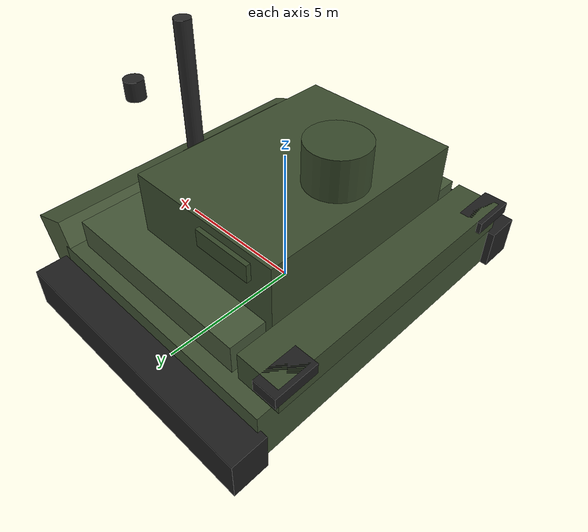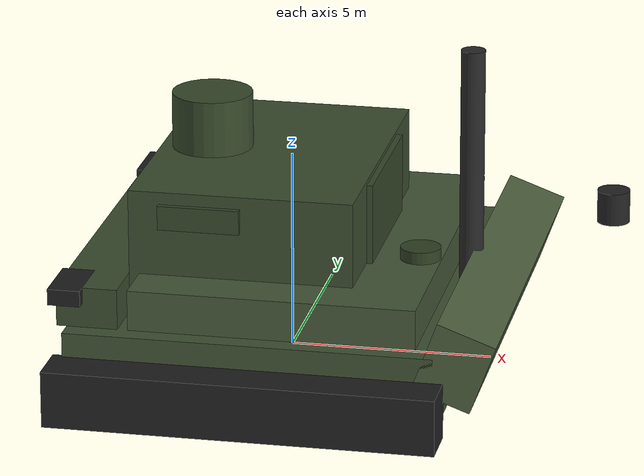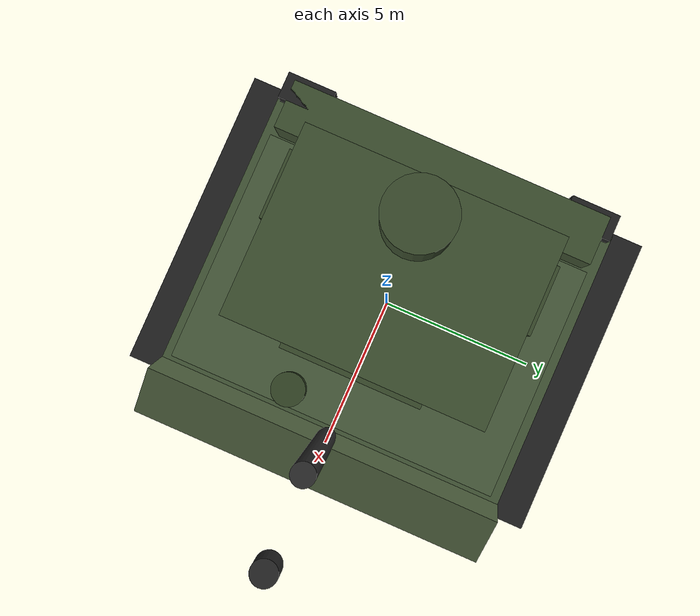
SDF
<?xml version="1.0" ?>
<sdf version="1.6">
  <model name="simple_vehicle">
    <static>true</static>

    <!-- Main Hull/Chassis -->
    <link name="hull_lower">
      <pose>0 0 1.0 0 0 0</pose>
      <collision name="hull_lower_collision">
        <geometry>
          <box>
            <size>9.0 11.0 2.0</size>
          </box>
        </geometry>
      </collision>
      <visual name="hull_lower_visual">
        <geometry>
          <box>
            <size>9.0 11.0 2.0</size>
          </box>
        </geometry>
        <material>
          <ambient>0.22 0.28 0.18 1</ambient>
          <diffuse>0.25 0.32 0.20 1</diffuse>
          <specular>0.15 0.15 0.15 1</specular>
        </material>
      </visual>
    </link>

    <!-- Upper Hull -->
    <link name="hull_upper">
      <pose>0.5 0 2.5 0 0 0</pose>
      <collision name="hull_upper_collision">
        <geometry>
          <box>
            <size>7.0 10.0 1.0</size>
          </box>
        </geometry>
      </collision>
      <visual name="hull_upper_visual">
        <geometry>
          <box>
            <size>7.0 10.0 1.0</size>
          </box>
        </geometry>
        <material>
          <ambient>0.24 0.30 0.19 1</ambient>
          <diffuse>0.27 0.34 0.22 1</diffuse>
          <specular>0.18 0.18 0.18 1</specular>
        </material>
      </visual>
    </link>

    <!-- Main Turret -->
    <link name="turret_base">
      <pose>-0.5 0 3.8 0 0 0</pose>
      <collision name="turret_collision">
        <geometry>
          <box>
            <size>5.5 7.5 2.6</size>
          </box>
        </geometry>
      </collision>
      <visual name="turret_visual">
        <geometry>
          <box>
            <size>5.5 7.5 2.6</size>
          </box>
        </geometry>
        <material>
          <ambient>0.20 0.26 0.16 1</ambient>
          <diffuse>0.23 0.30 0.18 1</diffuse>
          <specular>0.20 0.20 0.20 1</specular>
        </material>
      </visual>
    </link>

    <!-- Turret Front Armor (Mantlet) -->
    <link name="turret_mantlet">
      <pose>1.5 0 4.0 0 0 0</pose>
      <collision name="mantlet_collision">
        <geometry>
          <box>
            <size>1.8 4.0 2.0</size>
          </box>
        </geometry>
      </collision>
      <visual name="mantlet_visual">
        <geometry>
          <box>
            <size>1.8 4.0 2.0</size>
          </box>
        </geometry>
        <material>
          <ambient>0.18 0.24 0.14 1</ambient>
          <diffuse>0.21 0.28 0.16 1</diffuse>
          <specular>0.25 0.25 0.25 1</specular>
        </material>
      </visual>
    </link>

    <!-- Commander's Cupola -->
    <link name="cupola">
      <pose>-2.0 0 5.8 0 0 0</pose>
      <collision name="cupola_collision">
        <geometry>
          <cylinder>
            <radius>1.0</radius>
            <length>1.4</length>
          </cylinder>
        </geometry>
      </collision>
      <visual name="cupola_visual">
        <geometry>
          <cylinder>
            <radius>1.0</radius>
            <length>1.4</length>
          </cylinder>
        </geometry>
        <material>
          <ambient>0.19 0.25 0.15 1</ambient>
          <diffuse>0.22 0.29 0.17 1</diffuse>
          <specular>0.22 0.22 0.22 1</specular>
        </material>
      </visual>
    </link>

    <!-- Main Gun Barrel -->
    <link name="gun_barrel">
      <pose>4.5 0 4.2 0 0 0</pose>
      <collision name="gun_collision">
        <geometry>
          <cylinder>
            <radius>0.30</radius>
            <length>7.5</length>
          </cylinder>
        </geometry>
      </collision>
      <visual name="gun_visual">
        <geometry>
          <cylinder>
            <radius>0.30</radius>
            <length>7.5</length>
          </cylinder>
        </geometry>
        <material>
          <ambient>0.12 0.12 0.12 1</ambient>
          <diffuse>0.16 0.16 0.16 1</diffuse>
          <specular>0.35 0.35 0.35 1</specular>
        </material>
      </visual>
    </link>

    <!-- Gun Muzzle Brake -->
    <link name="muzzle_brake">
      <pose>8.0 0 4.2 0 0 0</pose>
      <collision name="muzzle_collision">
        <geometry>
          <cylinder>
            <radius>0.40</radius>
            <length>0.8</length>
          </cylinder>
        </geometry>
      </collision>
      <visual name="muzzle_visual">
        <geometry>
          <cylinder>
            <radius>0.40</radius>
            <length>0.8</length>
          </cylinder>
        </geometry>
        <material>
          <ambient>0.10 0.10 0.10 1</ambient>
          <diffuse>0.14 0.14 0.14 1</diffuse>
          <specular>0.40 0.40 0.40 1</specular>
        </material>
      </visual>
    </link>

    <!-- Left Track Assembly -->
    <link name="track_left">
      <pose>0 6.0 0.7 0 0 0</pose>
      <collision name="track_left_collision">
        <geometry>
          <box>
            <size>9.5 1.2 1.4</size>
          </box>
        </geometry>
      </collision>
      <visual name="track_left_visual">
        <geometry>
          <box>
            <size>9.5 1.2 1.4</size>
          </box>
        </geometry>
        <material>
          <ambient>0.08 0.08 0.08 1</ambient>
          <diffuse>0.12 0.12 0.12 1</diffuse>
          <specular>0.08 0.08 0.08 1</specular>
        </material>
      </visual>
    </link>

    <!-- Right Track Assembly -->
    <link name="track_right">
      <pose>0 -6.0 0.7 0 0 0</pose>
      <collision name="track_right_collision">
        <geometry>
          <box>
            <size>9.5 1.2 1.4</size>
          </box>
        </geometry>
      </collision>
      <visual name="track_right_visual">
        <geometry>
          <box>
            <size>9.5 1.2 1.4</size>
          </box>
        </geometry>
        <material>
          <ambient>0.08 0.08 0.08 1</ambient>
          <diffuse>0.12 0.12 0.12 1</diffuse>
          <specular>0.08 0.08 0.08 1</specular>
        </material>
      </visual>
    </link>

    <!-- Road Wheels - Left Side -->
    <link name="wheel_1_left">
      <pose>3.5 6.0 0.7 1.5708 0 0</pose>
      <collision name="wheel_collision">
        <geometry>
          <cylinder>
            <radius>0.70</radius>
            <length>0.5</length>
          </cylinder>
        </geometry>
      </collision>
      <visual name="wheel_visual">
        <geometry>
          <cylinder>
            <radius>0.70</radius>
            <length>0.5</length>
          </cylinder>
        </geometry>
        <material>
          <ambient>0.06 0.06 0.06 1</ambient>
          <diffuse>0.10 0.10 0.10 1</diffuse>
          <specular>0.12 0.12 0.12 1</specular>
        </material>
      </visual>
    </link>

    <link name="wheel_2_left">
      <pose>1.5 6.0 0.7 1.5708 0 0</pose>
      <collision name="wheel_collision">
        <geometry>
          <cylinder>
            <radius>0.70</radius>
            <length>0.5</length>
          </cylinder>
        </geometry>
      </collision>
      <visual name="wheel_visual">
        <geometry>
          <cylinder>
            <radius>0.70</radius>
            <length>0.5</length>
          </cylinder>
        </geometry>
        <material>
          <ambient>0.06 0.06 0.06 1</ambient>
          <diffuse>0.10 0.10 0.10 1</diffuse>
          <specular>0.12 0.12 0.12 1</specular>
        </material>
      </visual>
    </link>

    <link name="wheel_3_left">
      <pose>-0.5 6.0 0.7 1.5708 0 0</pose>
      <collision name="wheel_collision">
        <geometry>
          <cylinder>
            <radius>0.70</radius>
            <length>0.5</length>
          </cylinder>
        </geometry>
      </collision>
      <visual name="wheel_visual">
        <geometry>
          <cylinder>
            <radius>0.70</radius>
            <length>0.5</length>
          </cylinder>
        </geometry>
        <material>
          <ambient>0.06 0.06 0.06 1</ambient>
          <diffuse>0.10 0.10 0.10 1</diffuse>
          <specular>0.12 0.12 0.12 1</specular>
        </material>
      </visual>
    </link>

    <link name="wheel_4_left">
      <pose>-2.5 6.0 0.7 1.5708 0 0</pose>
      <collision name="wheel_collision">
        <geometry>
          <cylinder>
            <radius>0.70</radius>
            <length>0.5</length>
          </cylinder>
        </geometry>
      </collision>
      <visual name="wheel_visual">
        <geometry>
          <cylinder>
            <radius>0.70</radius>
            <length>0.5</length>
          </cylinder>
        </geometry>
        <material>
          <ambient>0.06 0.06 0.06 1</ambient>
          <diffuse>0.10 0.10 0.10 1</diffuse>
          <specular>0.12 0.12 0.12 1</specular>
        </material>
      </visual>
    </link>

    <!-- Road Wheels - Right Side -->
    <link name="wheel_1_right">
      <pose>3.5 -6.0 0.7 1.5708 0 0</pose>
      <collision name="wheel_collision">
        <geometry>
          <cylinder>
            <radius>0.70</radius>
            <length>0.5</length>
          </cylinder>
        </geometry>
      </collision>
      <visual name="wheel_visual">
        <geometry>
          <cylinder>
            <radius>0.70</radius>
            <length>0.5</length>
          </cylinder>
        </geometry>
        <material>
          <ambient>0.06 0.06 0.06 1</ambient>
          <diffuse>0.10 0.10 0.10 1</diffuse>
          <specular>0.12 0.12 0.12 1</specular>
        </material>
      </visual>
    </link>

    <link name="wheel_2_right">
      <pose>1.5 -6.0 0.7 1.5708 0 0</pose>
      <collision name="wheel_collision">
        <geometry>
          <cylinder>
            <radius>0.70</radius>
            <length>0.5</length>
          </cylinder>
        </geometry>
      </collision>
      <visual name="wheel_visual">
        <geometry>
          <cylinder>
            <radius>0.70</radius>
            <length>0.5</length>
          </cylinder>
        </geometry>
        <material>
          <ambient>0.06 0.06 0.06 1</ambient>
          <diffuse>0.10 0.10 0.10 1</diffuse>
          <specular>0.12 0.12 0.12 1</specular>
        </material>
      </visual>
    </link>

    <link name="wheel_3_right">
      <pose>-0.5 -6.0 0.7 1.5708 0 0</pose>
      <collision name="wheel_collision">
        <geometry>
          <cylinder>
            <radius>0.70</radius>
            <length>0.5</length>
          </cylinder>
        </geometry>
      </collision>
      <visual name="wheel_visual">
        <geometry>
          <cylinder>
            <radius>0.70</radius>
            <length>0.5</length>
          </cylinder>
        </geometry>
        <material>
          <ambient>0.06 0.06 0.06 1</ambient>
          <diffuse>0.10 0.10 0.10 1</diffuse>
          <specular>0.12 0.12 0.12 1</specular>
        </material>
      </visual>
    </link>

    <link name="wheel_4_right">
      <pose>-2.5 -6.0 0.7 1.5708 0 0</pose>
      <collision name="wheel_collision">
        <geometry>
          <cylinder>
            <radius>0.70</radius>
            <length>0.5</length>
          </cylinder>
        </geometry>
      </collision>
      <visual name="wheel_visual">
        <geometry>
          <cylinder>
            <radius>0.70</radius>
            <length>0.5</length>
          </cylinder>
        </geometry>
        <material>
          <ambient>0.06 0.06 0.06 1</ambient>
          <diffuse>0.10 0.10 0.10 1</diffuse>
          <specular>0.12 0.12 0.12 1</specular>
        </material>
      </visual>
    </link>

    <!-- Front Glacis Armor (Angled) -->
    <link name="front_glacis">
      <pose>5.0 0 1.8 0 0.35 0</pose>
      <collision name="glacis_collision">
        <geometry>
          <box>
            <size>1.5 11.0 1.8</size>
          </box>
        </geometry>
      </collision>
      <visual name="glacis_visual">
        <geometry>
          <box>
            <size>1.5 11.0 1.8</size>
          </box>
        </geometry>
        <material>
          <ambient>0.26 0.32 0.20 1</ambient>
          <diffuse>0.29 0.36 0.23 1</diffuse>
          <specular>0.20 0.20 0.20 1</specular>
        </material>
      </visual>
    </link>

    <!-- Engine Deck -->
    <link name="engine_deck">
      <pose>-4.0 0 2.5 0 0 0</pose>
      <collision name="engine_collision">
        <geometry>
          <box>
            <size>1.5 10.0 1.0</size>
          </box>
        </geometry>
      </collision>
      <visual name="engine_visual">
        <geometry>
          <box>
            <size>1.5 10.0 1.0</size>
          </box>
        </geometry>
        <material>
          <ambient>0.20 0.26 0.16 1</ambient>
          <diffuse>0.23 0.30 0.18 1</diffuse>
          <specular>0.12 0.12 0.12 1</specular>
        </material>
      </visual>
    </link>

    <!-- Engine Exhaust Grilles (Left) -->
    <link name="exhaust_left">
      <pose>-4.5 4.5 2.8 0 0 0</pose>
      <visual name="exhaust_visual">
        <geometry>
          <box>
            <size>0.8 1.5 0.4</size>
          </box>
        </geometry>
        <material>
          <ambient>0.08 0.08 0.08 1</ambient>
          <diffuse>0.12 0.12 0.12 1</diffuse>
          <specular>0.05 0.05 0.05 1</specular>
        </material>
      </visual>
    </link>

    <!-- Engine Exhaust Grilles (Right) -->
    <link name="exhaust_right">
      <pose>-4.5 -4.5 2.8 0 0 0</pose>
      <visual name="exhaust_visual">
        <geometry>
          <box>
            <size>0.8 1.5 0.4</size>
          </box>
        </geometry>
        <material>
          <ambient>0.08 0.08 0.08 1</ambient>
          <diffuse>0.12 0.12 0.12 1</diffuse>
          <specular>0.05 0.05 0.05 1</specular>
        </material>
      </visual>
    </link>

    <!-- Side Skirt Armor (Left) -->
    <link name="skirt_left">
      <pose>0 5.2 1.2 0 0 0</pose>
      <visual name="skirt_visual">
        <geometry>
          <box>
            <size>7.0 0.3 1.0</size>
          </box>
        </geometry>
        <material>
          <ambient>0.24 0.30 0.19 1</ambient>
          <diffuse>0.27 0.34 0.22 1</diffuse>
          <specular>0.15 0.15 0.15 1</specular>
        </material>
      </visual>
    </link>

    <!-- Side Skirt Armor (Right) -->
    <link name="skirt_right">
      <pose>0 -5.2 1.2 0 0 0</pose>
      <visual name="skirt_visual">
        <geometry>
          <box>
            <size>7.0 0.3 1.0</size>
          </box>
        </geometry>
        <material>
          <ambient>0.24 0.30 0.19 1</ambient>
          <diffuse>0.27 0.34 0.22 1</diffuse>
          <specular>0.15 0.15 0.15 1</specular>
        </material>
      </visual>
    </link>

    <!-- Turret Storage Boxes (Left) -->
    <link name="storage_left">
      <pose>-1.5 3.5 4.5 0 0 0</pose>
      <visual name="storage_visual">
        <geometry>
          <box>
            <size>2.0 0.8 0.6</size>
          </box>
        </geometry>
        <material>
          <ambient>0.18 0.24 0.14 1</ambient>
          <diffuse>0.21 0.28 0.16 1</diffuse>
          <specular>0.10 0.10 0.10 1</specular>
        </material>
      </visual>
    </link>

    <!-- Turret Storage Boxes (Right) -->
    <link name="storage_right">
      <pose>-1.5 -3.5 4.5 0 0 0</pose>
      <visual name="storage_visual">
        <geometry>
          <box>
            <size>2.0 0.8 0.6</size>
          </box>
        </geometry>
        <material>
          <ambient>0.18 0.24 0.14 1</ambient>
          <diffuse>0.21 0.28 0.16 1</diffuse>
          <specular>0.10 0.10 0.10 1</specular>
        </material>
      </visual>
    </link>

    <!-- Driver's Hatch -->
    <link name="driver_hatch">
      <pose>3.5 -1.5 3.2 0 0 0</pose>
      <visual name="hatch_visual">
        <geometry>
          <cylinder>
            <radius>0.5</radius>
            <length>0.3</length>
          </cylinder>
        </geometry>
        <material>
          <ambient>0.16 0.22 0.12 1</ambient>
          <diffuse>0.19 0.26 0.14 1</diffuse>
          <specular>0.18 0.18 0.18 1</specular>
        </material>
      </visual>
    </link>

  </model>
</sdf>
